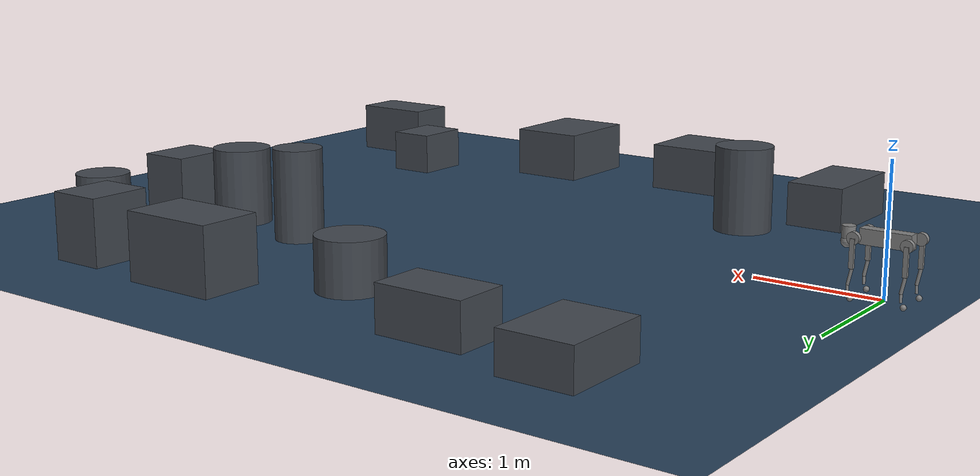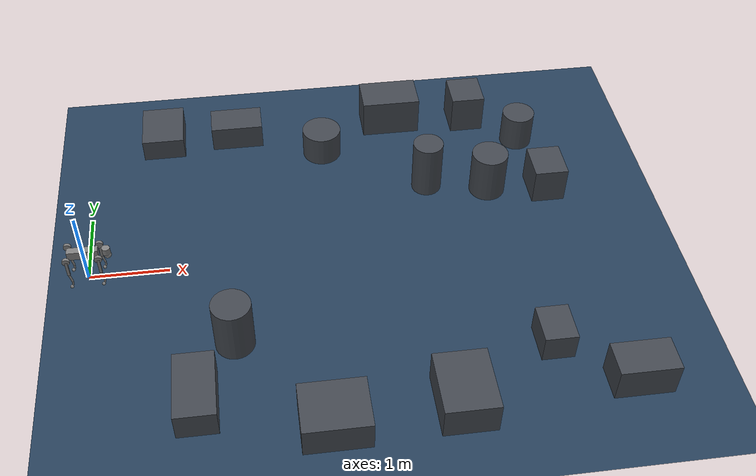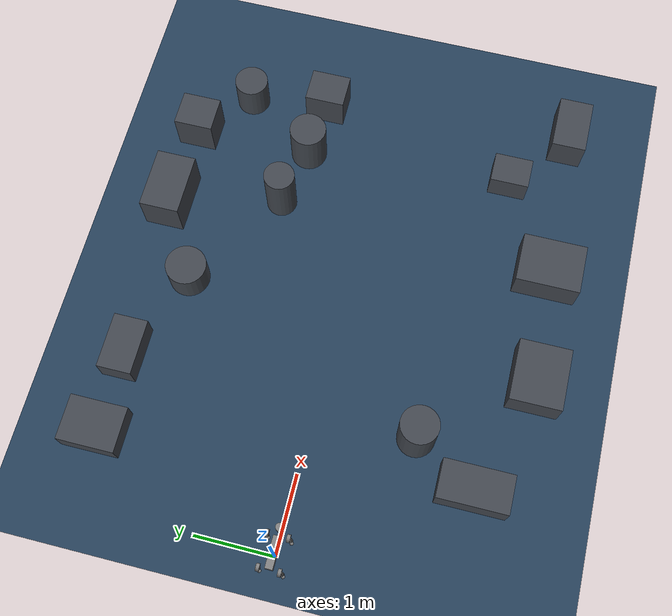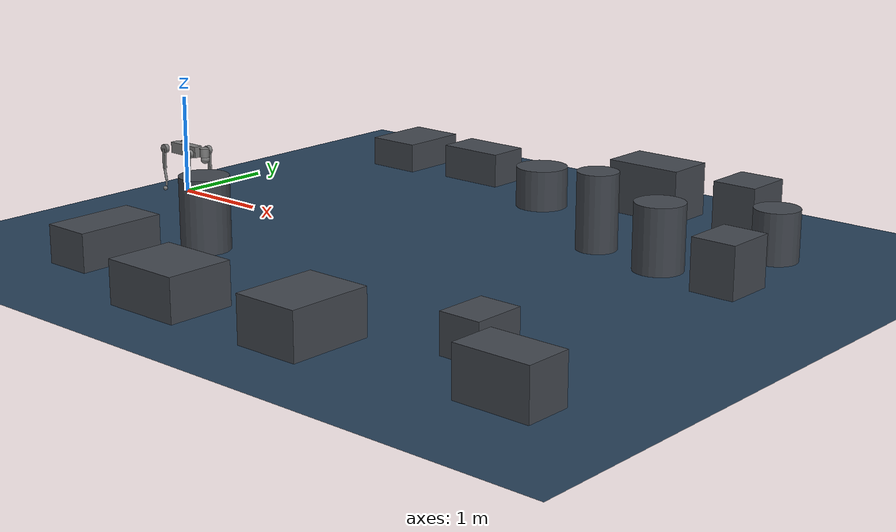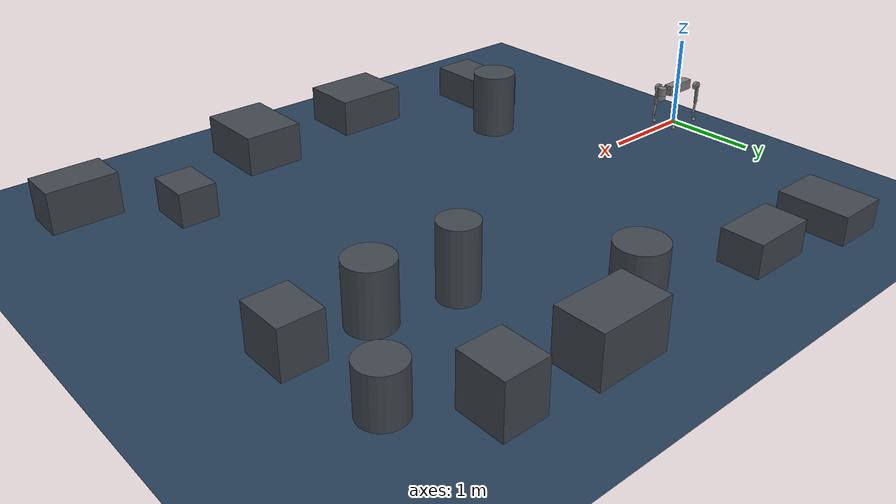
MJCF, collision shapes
<?xml version="1.0" encoding="utf-8"?>
<mujoco model="go2 random_scene_01">
  <include file="go2.xml" />
  <statistic center="3.5 0 0.1" extent="8" />
  <visual>
    <headlight diffuse="0.6 0.6 0.6" ambient="0.3 0.3 0.3" specular="0 0 0" />
    <rgba haze="0.15 0.25 0.35 1" />
    <global azimuth="135" elevation="-40" />
  </visual>
  <asset>
    <texture type="skybox" builtin="gradient" rgb1="0.3 0.5 0.7" rgb2="0 0 0" width="512" height="3072" />
    <texture type="2d" name="random_groundplane" builtin="checker" mark="edge" rgb1="0.2 0.3 0.4" rgb2="0.1 0.2 0.3" markrgb="0.8 0.8 0.8" width="300" height="300" />
    <material name="random_groundplane" texture="random_groundplane" texuniform="true" texrepeat="5 5" reflectance="0.2" />
  </asset>
  <worldbody>
    <light pos="1 0 7" dir="0 0 -1" directional="true" />
    <geom name="floor" type="plane" pos="3.5 0 0" size="4 3.5 0.05" material="random_groundplane" />
    <geom name="ppt_obstacle_01" type="cylinder" pos="3.1375639589161599 2.0112182510678207 0.20533778111835732" size="0.26101820273760168 0.20533778111835732" rgba="0.26 0.28 0.31 1" />
    <geom name="ppt_obstacle_02" type="box" pos="2.8040734693933307 -2.5761384157293277 0.20241258739060769" size="0.3915940339033237 0.32554993754575684 0.20241258739060769" rgba="0.26 0.28 0.31 1" />
    <geom name="ppt_obstacle_03" type="cylinder" pos="5.9036314337911477 1.9293706792508281 0.24704937725335416" size="0.21803709984034264 0.24704937725335416" rgba="0.26 0.28 0.31 1" />
    <geom name="ppt_obstacle_04" type="box" pos="5.4847559705508377 -1.7370303701440586 0.18235417367577259" size="0.19817189593042919 0.24741063491426499 0.18235417367577259" rgba="0.26 0.28 0.31 1" />
    <geom name="ppt_obstacle_05" type="box" pos="4.2675281483869902 -2.4574214522201316 0.21503976371581657" size="0.31824484193640873 0.40410276557911734 0.21503976371581657" rgba="0.26 0.28 0.31 1" />
    <geom name="ppt_obstacle_06" type="cylinder" pos="5.2780805909746888 0.97374994913545754 0.31561318488197876" size="0.23746270177639128 0.31561318488197876" rgba="0.26 0.28 0.31 1" />
    <geom name="ppt_obstacle_07" type="cylinder" pos="1.7667500556903928 -1.2818883027675028 0.35206198814642764" size="0.23714123962879824 0.35206198814642764" rgba="0.26 0.28 0.31 1" />
    <geom name="ppt_obstacle_08" type="box" pos="1.973250630607069 2.4723124368542382 0.17439314235546122" size="0.3501766149423538 0.21822519151911332 0.17439314235546122" rgba="0.26 0.28 0.31 1" />
    <geom name="ppt_obstacle_09" type="box" pos="6.0489050465561274 0.89855718631018222 0.2453413084856533" size="0.21822734013589928 0.25790944846683644 0.2453413084856533" rgba="0.26 0.28 0.31 1" />
    <geom name="ppt_obstacle_10" type="box" pos="1.3002736807026312 -2.0775101186830338 0.18267481056040236" size="0.24057858548330149 0.43705171517930802 0.18267481056040236" rgba="0.26 0.28 0.31 1" />
    <geom name="ppt_obstacle_11" type="box" pos="6.3167316461567946 -2.3971633980090559 0.22202408659527012" size="0.35667150330154718 0.21877165895786249 0.22202408659527012" rgba="0.26 0.28 0.31 1" />
    <geom name="ppt_obstacle_12" type="box" pos="5.252992535231626 2.4855016404789914 0.26723489456385213" size="0.22573863672485189 0.25078046831685197 0.26723489456385213" rgba="0.26 0.28 0.31 1" />
    <geom name="ppt_obstacle_13" type="box" pos="4.1632170051842685 2.5561217386554218 0.26505073902531495" size="0.39383254513939658 0.25400754526367858 0.26505073902531495" rgba="0.26 0.28 0.31 1" />
    <geom name="ppt_obstacle_14" type="cylinder" pos="4.472952031361654 1.1389494179675079 0.37278446190326392" size="0.19816573095160239 0.37278446190326392" rgba="0.26 0.28 0.31 1" />
    <geom name="ppt_obstacle_15" type="box" pos="0.94322911514814123 2.5189845162980586 0.1517659701914969" size="0.28334922947200492 0.36252614978605835 0.1517659701914969" rgba="0.26 0.28 0.31 1" />
  </worldbody>
</mujoco>

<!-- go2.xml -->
<mujoco model="go2">
  <compiler angle="radian" meshdir="assets" autolimits="true" />

  <option cone="elliptic" impratio="100" />

  <default>
    <default class="go2">
      <geom friction="0.4" margin="0.001" condim="1"/>
      <joint axis="0 1 0" damping="0.1" armature="0.01" frictionloss="0.2"/>
      <motor ctrlrange="-23.7 23.7"/>
      <default class="abduction">
        <joint axis="1 0 0" range="-1.0472 1.0472"/>
      </default>
      <default class="hip">
        <default class="front_hip">
          <joint range="-1.5708 3.4907"/>
        </default>
        <default class="back_hip">
          <joint range="-0.5236 4.5379"/>
        </default>
      </default>
      <default class="knee">
        <joint range="-2.7227 -0.83776"/>
        <motor ctrlrange="-45.43 45.43"/>
      </default>
      <default class="visual">
        <geom type="mesh" contype="0" conaffinity="0" group="2"/>
      </default>
      <default class="collision">
        <geom group="3"/>
        <default class="foot">
          <geom size="0.022" pos="-0.002 0 -0.213" priority="1" condim="6"
            friction="0.4 0.02 0.01"/>
        </default>
      </default>
    </default>
  </default>

  <asset>
    <material name="metal" rgba=".9 .95 .95 1" />
    <material name="black" rgba="0 0 0 1" />
    <material name="white" rgba="1 1 1 1" />
    <material name="gray" rgba="0.671705 0.692426 0.774270 1" />
    <material name="transparent" rgba="1 1 1 0.01" />

    <mesh file="base_0.obj" />
    <mesh file="base_1.obj" />
    <mesh file="base_2.obj" />
    <mesh file="base_3.obj" />
    <mesh file="base_4.obj" />
    <mesh file="hip_0.obj" />
    <mesh file="hip_1.obj" />
    <mesh file="thigh_0.obj" />
    <mesh file="thigh_1.obj" />
    <mesh file="thigh_mirror_0.obj" />
    <mesh file="thigh_mirror_1.obj" />
    <mesh file="calf_0.obj" />
    <mesh file="calf_1.obj" />
    <mesh file="calf_mirror_0.obj" />
    <mesh file="calf_mirror_1.obj" />
    <mesh file="foot.obj" />
  </asset>

  <worldbody>
    <body name="base_link" pos="0 0 0.445" childclass="go2">
      <inertial pos="0.021112 0 -0.005366" quat="-0.000543471 0.713435 -0.00173769 0.700719"
        mass="6.921"
        diaginertia="0.107027 0.0980771 0.0244531" />
      <freejoint />
      <geom mesh="base_0" material="black" class="visual" />
      <geom mesh="base_1" material="black" class="visual" />
      <geom mesh="base_2" material="black" class="visual" />
      <geom mesh="base_3" material="white" class="visual" />
      <geom mesh="base_4" material="gray" class="visual" />
      <geom size="0.1881 0.04675 0.057" type="box" class="collision" />
      <geom size="0.05 0.045" pos="0.285 0 0.01" type="cylinder" class="collision" />
      <geom size="0.047" pos="0.293 0 -0.06" class="collision" />
      <site name="imu" pos="-0.02557 0 0.04232" />
      <body name="FL_hip" pos="0.1934 0.0465 0">
        <inertial pos="-0.0054 0.00194 -0.000105" quat="0.497014 0.499245 0.505462 0.498237"
          mass="0.678"
          diaginertia="0.00088403 0.000596003 0.000479967" />
        <joint name="FL_hip_joint" class="abduction" />
        <geom mesh="hip_0" material="metal" class="visual" />
        <geom mesh="hip_1" material="gray" class="visual" />
        <geom size="0.046 0.02" pos="0 0.08 0" quat="1 1 0 0" type="cylinder" class="collision" />
        <body name="FL_thigh" pos="0 0.0955 0">
          <inertial pos="-0.00374 -0.0223 -0.0327" quat="0.829533 0.0847635 -0.0200632 0.551623"
            mass="1.152"
            diaginertia="0.00594973 0.00584149 0.000878787" />
          <joint name="FL_thigh_joint" class="front_hip" />
          <geom mesh="thigh_0" material="metal" class="visual" />
          <geom mesh="thigh_1" material="gray" class="visual" />
          <geom size="0.1065 0.01225 0.017" pos="0 0 -0.1065" quat="0.707107 0 0.707107 0"
            type="box" class="collision" />
          <body name="FL_calf" pos="0 0 -0.213">
            <inertial pos="0.00629595 -0.000622121 -0.141417"
              quat="0.710672 0.00154099 -0.00450087 0.703508"
              mass="0.241352" diaginertia="0.0014901 0.00146356 5.31397e-05" />
            <joint name="FL_calf_joint" class="knee" />
            <geom mesh="calf_0" material="gray" class="visual" />
            <geom mesh="calf_1" material="black" class="visual" />
            <geom size="0.012 0.06" pos="0.008 0 -0.06" quat="0.994493 0 -0.104807 0"
              type="cylinder" class="collision" />
            <geom size="0.011 0.0325" pos="0.02 0 -0.148" quat="0.999688 0 0.0249974 0"
              type="cylinder" class="collision" />
            <geom pos="0 0 -0.213" mesh="foot" class="visual" material="black" />
            <geom name="FL" class="foot" />
            <site name="FL_touch" pos="0 0 -0.213" size="0.027" material="transparent"/>
            <body name="FL_foot" pos="0 0 -0.213"/>
          </body>
        </body>
      </body>
      <body name="FR_hip" pos="0.1934 -0.0465 0">
        <inertial pos="-0.0054 -0.00194 -0.000105" quat="0.498237 0.505462 0.499245 0.497014"
          mass="0.678"
          diaginertia="0.00088403 0.000596003 0.000479967" />
        <joint name="FR_hip_joint" class="abduction" />
        <geom mesh="hip_0" material="metal" class="visual" quat="4.63268e-05 1 0 0" />
        <geom mesh="hip_1" material="gray" class="visual" quat="4.63268e-05 1 0 0" />
        <geom size="0.046 0.02" pos="0 -0.08 0" quat="0.707107 0.707107 0 0" type="cylinder"
          class="collision" />
        <body name="FR_thigh" pos="0 -0.0955 0">
          <inertial pos="-0.00374 0.0223 -0.0327" quat="0.551623 -0.0200632 0.0847635 0.829533"
            mass="1.152"
            diaginertia="0.00594973 0.00584149 0.000878787" />
          <joint name="FR_thigh_joint" class="front_hip" />
          <geom mesh="thigh_mirror_0" material="metal" class="visual" />
          <geom mesh="thigh_mirror_1" material="gray" class="visual" />
          <geom size="0.1065 0.01225 0.017" pos="0 0 -0.1065" quat="0.707107 0 0.707107 0"
            type="box" class="collision" />
          <body name="FR_calf" pos="0 0 -0.213">
            <inertial pos="0.00629595 0.000622121 -0.141417"
              quat="0.703508 -0.00450087 0.00154099 0.710672"
              mass="0.241352" diaginertia="0.0014901 0.00146356 5.31397e-05" />
            <joint name="FR_calf_joint" class="knee" />
            <geom mesh="calf_mirror_0" material="gray" class="visual" />
            <geom mesh="calf_mirror_1" material="black" class="visual" />
            <geom size="0.013 0.06" pos="0.01 0 -0.06" quat="0.995004 0 -0.0998334 0"
              type="cylinder" class="collision" />
            <geom size="0.011 0.0325" pos="0.02 0 -0.148" quat="0.999688 0 0.0249974 0"
              type="cylinder" class="collision" />
            <geom pos="0 0 -0.213" mesh="foot" class="visual" material="black" />
            <geom name="FR" class="foot" />
            <site name="FR_touch" pos="0 0 -0.213" size="0.027" material="transparent"/>
            <body name="FR_foot" pos="0 0 -0.213"/>
          </body>
        </body>
      </body>
      <body name="RL_hip" pos="-0.1934 0.0465 0">
        <inertial pos="0.0054 0.00194 -0.000105" quat="0.505462 0.498237 0.497014 0.499245"
          mass="0.678"
          diaginertia="0.00088403 0.000596003 0.000479967" />
        <joint name="RL_hip_joint" class="abduction" />
        <geom mesh="hip_0" material="metal" class="visual" quat="4.63268e-05 0 1 0" />
        <geom mesh="hip_1" material="gray" class="visual" quat="4.63268e-05 0 1 0" />
        <geom size="0.046 0.02" pos="0 0.08 0" quat="0.707107 0.707107 0 0" type="cylinder"
          class="collision" />
        <body name="RL_thigh" pos="0 0.0955 0">
          <inertial pos="-0.00374 -0.0223 -0.0327" quat="0.829533 0.0847635 -0.0200632 0.551623"
            mass="1.152"
            diaginertia="0.00594973 0.00584149 0.000878787" />
          <joint name="RL_thigh_joint" class="back_hip" />
          <geom mesh="thigh_0" material="metal" class="visual" />
          <geom mesh="thigh_1" material="gray" class="visual" />
          <geom size="0.1065 0.01225 0.017" pos="0 0 -0.1065" quat="0.707107 0 0.707107 0"
            type="box" class="collision" />
          <body name="RL_calf" pos="0 0 -0.213">
            <inertial pos="0.00629595 -0.000622121 -0.141417"
              quat="0.710672 0.00154099 -0.00450087 0.703508"
              mass="0.241352" diaginertia="0.0014901 0.00146356 5.31397e-05" />
            <joint name="RL_calf_joint" class="knee" />
            <geom mesh="calf_0" material="gray" class="visual" />
            <geom mesh="calf_1" material="black" class="visual" />
            <geom size="0.013 0.06" pos="0.01 0 -0.06" quat="0.995004 0 -0.0998334 0"
              type="cylinder" class="collision" />
            <geom size="0.011 0.0325" pos="0.02 0 -0.148" quat="0.999688 0 0.0249974 0"
              type="cylinder" class="collision" />
            <geom pos="0 0 -0.213" mesh="foot" class="visual" material="black" />
            <geom name="RL" class="foot" />
            <site name="RL_touch" pos="0 0 -0.213" size="0.027" material="transparent"/>
            <body name="RL_foot" pos="0 0 -0.213" />
          </body>
        </body>
      </body>
      <body name="RR_hip" pos="-0.1934 -0.0465 0">
        <inertial pos="0.0054 -0.00194 -0.000105" quat="0.499245 0.497014 0.498237 0.505462"
          mass="0.678"
          diaginertia="0.00088403 0.000596003 0.000479967" />
        <joint name="RR_hip_joint" class="abduction" />
        <geom mesh="hip_0" material="metal" class="visual"
          quat="2.14617e-09 4.63268e-05 4.63268e-05 -1" />
        <geom mesh="hip_1" material="gray" class="visual"
          quat="2.14617e-09 4.63268e-05 4.63268e-05 -1" />
        <geom size="0.046 0.02" pos="0 -0.08 0" quat="0.707107 0.707107 0 0" type="cylinder"
          class="collision" />
        <body name="RR_thigh" pos="0 -0.0955 0">
          <inertial pos="-0.00374 0.0223 -0.0327" quat="0.551623 -0.0200632 0.0847635 0.829533"
            mass="1.152"
            diaginertia="0.00594973 0.00584149 0.000878787" />
          <joint name="RR_thigh_joint" class="back_hip" />
          <geom mesh="thigh_mirror_0" material="metal" class="visual" />
          <geom mesh="thigh_mirror_1" material="gray" class="visual" />
          <geom size="0.1065 0.01225 0.017" pos="0 0 -0.1065" quat="0.707107 0 0.707107 0"
            type="box" class="collision" />
          <body name="RR_calf" pos="0 0 -0.213">
            <inertial pos="0.00629595 0.000622121 -0.141417"
              quat="0.703508 -0.00450087 0.00154099 0.710672"
              mass="0.241352" diaginertia="0.0014901 0.00146356 5.31397e-05" />
            <joint name="RR_calf_joint" class="knee" />
            <geom mesh="calf_mirror_0" material="gray" class="visual" />
            <geom mesh="calf_mirror_1" material="black" class="visual" />
            <geom size="0.013 0.06" pos="0.01 0 -0.06" quat="0.995004 0 -0.0998334 0"
              type="cylinder" class="collision" />
            <geom size="0.011 0.0325" pos="0.02 0 -0.148" quat="0.999688 0 0.0249974 0"
              type="cylinder" class="collision" />
            <geom pos="0 0 -0.213" mesh="foot" class="visual" material="black" />
            <geom name="RR" class="foot" />
            <site name="RR_touch" pos="0 0 -0.213" size="0.027" material="transparent"/>
            <body name="RR_foot" pos="0 0 -0.213"/>
          </body>
        </body>
      </body>
    </body>
  </worldbody>

  <actuator>
    <motor class="abduction" name="FR_hip" joint="FR_hip_joint" />
    <motor class="hip" name="FR_thigh" joint="FR_thigh_joint" />
    <motor class="knee" name="FR_calf" joint="FR_calf_joint" />
    <motor class="abduction" name="FL_hip" joint="FL_hip_joint" />
    <motor class="hip" name="FL_thigh" joint="FL_thigh_joint" />
    <motor class="knee" name="FL_calf" joint="FL_calf_joint" />
    <motor class="abduction" name="RR_hip" joint="RR_hip_joint" />
    <motor class="hip" name="RR_thigh" joint="RR_thigh_joint" />
    <motor class="knee" name="RR_calf" joint="RR_calf_joint" />
    <motor class="abduction" name="RL_hip" joint="RL_hip_joint" />
    <motor class="hip" name="RL_thigh" joint="RL_thigh_joint" />
    <motor class="knee" name="RL_calf" joint="RL_calf_joint" />
  </actuator>

  <sensor>
    <jointpos name="FR_hip_pos" joint="FR_hip_joint" />
    <jointpos name="FR_thigh_pos" joint="FR_thigh_joint" />
    <jointpos name="FR_calf_pos" joint="FR_calf_joint" />
    <jointpos name="FL_hip_pos" joint="FL_hip_joint" />
    <jointpos name="FL_thigh_pos" joint="FL_thigh_joint" />
    <jointpos name="FL_calf_pos" joint="FL_calf_joint" />
    <jointpos name="RR_hip_pos" joint="RR_hip_joint" />
    <jointpos name="RR_thigh_pos" joint="RR_thigh_joint" />
    <jointpos name="RR_calf_pos" joint="RR_calf_joint" />
    <jointpos name="RL_hip_pos" joint="RL_hip_joint" />
    <jointpos name="RL_thigh_pos" joint="RL_thigh_joint" />
    <jointpos name="RL_calf_pos" joint="RL_calf_joint" />

    <jointvel name="FR_hip_vel" joint="FR_hip_joint" />
    <jointvel name="FR_thigh_vel" joint="FR_thigh_joint" />
    <jointvel name="FR_calf_vel" joint="FR_calf_joint" />
    <jointvel name="FL_hip_vel" joint="FL_hip_joint" />
    <jointvel name="FL_thigh_vel" joint="FL_thigh_joint" />
    <jointvel name="FL_calf_vel" joint="FL_calf_joint" />
    <jointvel name="RR_hip_vel" joint="RR_hip_joint" />
    <jointvel name="RR_thigh_vel" joint="RR_thigh_joint" />
    <jointvel name="RR_calf_vel" joint="RR_calf_joint" />
    <jointvel name="RL_hip_vel" joint="RL_hip_joint" />
    <jointvel name="RL_thigh_vel" joint="RL_thigh_joint" />
    <jointvel name="RL_calf_vel" joint="RL_calf_joint" />

    <jointactuatorfrc name="FR_hip_torque" joint="FR_hip_joint" noise="0.01" />
    <jointactuatorfrc name="FR_thigh_torque" joint="FR_thigh_joint" noise="0.01" />
    <jointactuatorfrc name="FR_calf_torque" joint="FR_calf_joint" noise="0.01" />
    <jointactuatorfrc name="FL_hip_torque" joint="FL_hip_joint" noise="0.01" />
    <jointactuatorfrc name="FL_thigh_torque" joint="FL_thigh_joint" noise="0.01" />
    <jointactuatorfrc name="FL_calf_torque" joint="FL_calf_joint" noise="0.01" />
    <jointactuatorfrc name="RR_hip_torque" joint="RR_hip_joint" noise="0.01" />
    <jointactuatorfrc name="RR_thigh_torque" joint="RR_thigh_joint" noise="0.01" />
    <jointactuatorfrc name="RR_calf_torque" joint="RR_calf_joint" noise="0.01" />
    <jointactuatorfrc name="RL_hip_torque" joint="RL_hip_joint" noise="0.01" />
    <jointactuatorfrc name="RL_thigh_torque" joint="RL_thigh_joint" noise="0.01" />
    <jointactuatorfrc name="RL_calf_torque" joint="RL_calf_joint" noise="0.01" />

    <framequat name="imu_quat" objtype="site" objname="imu" />
    <gyro name="imu_gyro" site="imu" />
    <accelerometer name="imu_acc" site="imu" />

    <framepos name="frame_pos" objtype="site" objname="imu" />
    <framelinvel name="frame_vel" objtype="site" objname="imu" />

    <touch name="FR_touch" site="FR_touch" />
    <touch name="FL_touch" site="FL_touch" />
    <touch name="RR_touch" site="RR_touch" />
    <touch name="RL_touch" site="RL_touch" />
  </sensor>

  <keyframe>
    <key name="home" qpos="0 0 0.445 1 0 0 0 0 0.8 -1.5 0 0.8 -1.5 0 0.8 -1.5 0 0.8 -1.5"
         ctrl="0 0 0 0 0 0 0 0 0 0 0 0" />
  </keyframe>
</mujoco>
